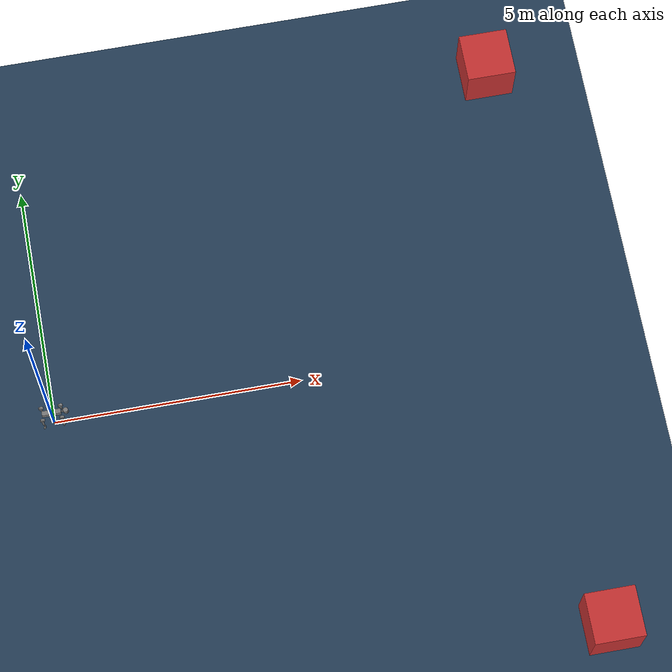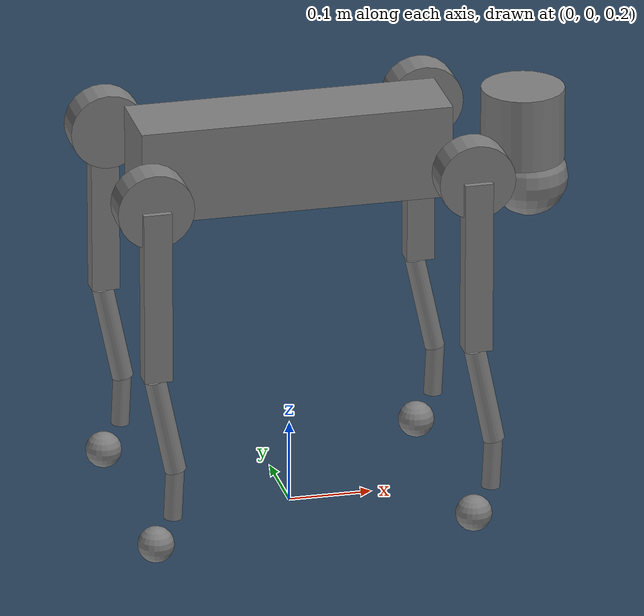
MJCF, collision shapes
<mujoco model="go2 scene">
  <include file="go2.xml" />
  <statistic center="0 0 0.1" extent="0.8" />
  <visual>
    <headlight diffuse="0.6 0.6 0.6" ambient="0.3 0.3 0.3" specular="0 0 0" />
    <rgba haze="0.15 0.25 0.35 1" />
    <global azimuth="-130" elevation="-20" />
    <map znear="0.01" zfar="100"/>
  </visual>
  <asset>
 <texture type="skybox" builtin="gradient" rgb1="0.3 0.5 0.7" rgb2="0 0 0" width="512" height="3072" />
    <texture type="2d" name="groundplane" builtin="checker" mark="edge" rgb1="0.2 0.3 0.4" rgb2="0.1 0.2 0.3" markrgb="0.8 0.8 0.8" width="300" height="300" />
    <material name="groundplane" texture="groundplane" texuniform="true" texrepeat="5 5" reflectance="0.2" />
</asset>
  <worldbody>
    <light pos="0 0 1.5" dir="0 0 -1" directional="true" />
    <geom name="floor" pos="0 0.0 0.01" size="0 0 0.01" type="plane" material="groundplane" />
<geom name="BP_Scene_Cube_1_C_2147482279" type="box" size="0.5 0.5 0.5" pos="10.0 -6.0 0.5" quat="1.0 0.0 0.0 0.0" rgba="0.8 0.2 0.2 1" solref="0.02 1" solimp="0.9 0.95 0.001"/>
<geom name="BP_Scene_Cube_2_C_2147482278" type="box" size="0.5 0.5 0.5" pos="10.0 6.0 0.5" quat="1.0 0.0 0.0 0.0" rgba="0.8 0.2 0.2 1" solref="0.02 1" solimp="0.9 0.95 0.001"/>
    </worldbody>
</mujoco>

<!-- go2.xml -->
<mujoco model="go2">
  <compiler angle="radian" meshdir="assets" autolimits="true" />

  <option cone="elliptic" impratio="100" />

  <default>
    <default class="go2">
      <geom friction="0.4" margin="0.001" condim="1"/>
      <joint axis="0 1 0" damping="0.1" armature="0.01" frictionloss="0.2"/>
      <motor ctrlrange="-23.7 23.7"/>
      <default class="abduction">
        <joint axis="1 0 0" range="-1.0472 1.0472"/>
      </default>
      <default class="hip">
        <default class="front_hip">
          <joint range="-1.5708 3.4907"/>
        </default>
        <default class="back_hip">
          <joint range="-0.5236 4.5379"/>
        </default>
      </default>
      <default class="knee">
        <joint range="-2.7227 -0.83776"/>
        <motor ctrlrange="-45.43 45.43"/>
      </default>
      <default class="visual">
        <geom type="mesh" contype="0" conaffinity="0" group="2"/>
      </default>
      <default class="collision">
        <geom group="3"/>
        <default class="foot">
          <geom size="0.022" pos="-0.002 0 -0.213" priority="1" condim="6"
            friction="0.4 0.02 0.01"/>
        </default>
      </default>
    </default>
  </default>

  <asset>
    <material name="metal" rgba=".9 .95 .95 1" />
    <material name="black" rgba="0 0 0 1" />
    <material name="white" rgba="1 1 1 1" />
    <material name="gray" rgba="0.671705 0.692426 0.774270 1" />

    <mesh name="base_0_LINK" file="base_0_LINK.obj" />
    <mesh name="base_1_LINK" file="base_1_LINK.obj" />
    <mesh name="base_2_LINK" file="base_2_LINK.obj" />
    <mesh name="base_3_LINK" file="base_3_LINK.obj" />
    <mesh name="base_4_BASE_LINK" file="base_4_BASE_LINK.obj" />

    <mesh name="FL_hip_0_LINK" file="hip_0_LINK.obj" />
    <mesh name="FL_hip_1_LINK" file="hip_1_LINK.obj" />
    <mesh name="FR_hip_0_LINK" file="hip_0_LINK.obj" />
    <mesh name="FR_hip_1_LINK" file="hip_1_LINK.obj" />
    <mesh name="RL_hip_0_LINK" file="hip_0_LINK.obj" />
    <mesh name="RL_hip_1_LINK" file="hip_1_LINK.obj" />
    <mesh name="RR_hip_0_LINK" file="hip_0_LINK.obj" />
    <mesh name="RR_hip_1_LINK" file="hip_1_LINK.obj" />

    <mesh name="FL_thigh_0_LINK" file="thigh_0_LINK.obj" />
    <mesh name="FL_thigh_1_LINK" file="thigh_1_LINK.obj" />
    <mesh name="RL_thigh_0_LINK" file="thigh_0_LINK.obj" />
    <mesh name="RL_thigh_1_LINK" file="thigh_1_LINK.obj" />

    <mesh name="FR_thigh_mirror_0_LINK" file="thigh_mirror_0_LINK.obj" />
    <mesh name="FR_thigh_mirror_1_LINK" file="thigh_mirror_1_LINK.obj" />
    <mesh name="RR_thigh_mirror_0_LINK" file="thigh_mirror_0_LINK.obj" />
    <mesh name="RR_thigh_mirror_1_LINK" file="thigh_mirror_1_LINK.obj" />

    <mesh name="FL_calf_0_LINK" file="calf_0_LINK.obj" />
    <mesh name="FL_calf_1_LINK" file="calf_1_LINK.obj" />
    <mesh name="RL_calf_0_LINK" file="calf_0_LINK.obj" />
    <mesh name="RL_calf_1_LINK" file="calf_1_LINK.obj" />

    <mesh name="FR_calf_mirror_0_LINK" file="calf_mirror_0_LINK.obj" />
    <mesh name="FR_calf_mirror_1_LINK" file="calf_mirror_1_LINK.obj" />
    <mesh name="RR_calf_mirror_0_LINK" file="calf_mirror_0_LINK.obj" />
    <mesh name="RR_calf_mirror_1_LINK" file="calf_mirror_1_LINK.obj" />

    <mesh name="FL_foot_LINK" file="foot_LINK.obj" />
    <mesh name="FR_foot_LINK" file="foot_LINK.obj" />
    <mesh name="RL_foot_LINK" file="foot_LINK.obj" />
    <mesh name="RR_foot_LINK" file="foot_LINK.obj" />
  </asset>

  <worldbody>
    <body name="base_link" pos="0 0 0.65" childclass="go2">
      <inertial pos="0.021112 0 -0.005366" quat="-0.000543471 0.713435 -0.00173769 0.700719"
        mass="6.921"
        diaginertia="0.107027 0.0980771 0.0244531" />
      <freejoint />
      <geom mesh="base_0_LINK" material="black" class="visual" />
      <geom mesh="base_1_LINK" material="black" class="visual" />
      <geom mesh="base_2_LINK" material="black" class="visual" />
      <geom mesh="base_3_LINK" material="white" class="visual" />
      <geom mesh="base_4_BASE_LINK" material="gray" class="visual" />
      <geom size="0.1881 0.04675 0.057" type="box" class="collision" />
      <geom size="0.05 0.045" pos="0.285 0 0.01" type="cylinder" class="collision" />
      <geom size="0.047" pos="0.293 0 -0.06" class="collision" />
      <site name="imu" pos="-0.02557 0 0.04232" />

      <body name="FL_hip" pos="0.1934 0.0465 0">
        <inertial pos="-0.0054 0.00194 -0.000105" quat="0.497014 0.499245 0.505462 0.498237"
          mass="0.678"
          diaginertia="0.00088403 0.000596003 0.000479967" />
        <joint name="FL_hip_joint" class="abduction" />
        <geom mesh="FL_hip_0_LINK" material="metal" class="visual" />
        <geom mesh="FL_hip_1_LINK" material="gray" class="visual" />
        <geom size="0.046 0.02" pos="0 0.08 0" quat="1 1 0 0" type="cylinder" class="collision" />
        <body name="FL_thigh" pos="0 0.0955 0">
          <inertial pos="-0.00374 -0.0223 -0.0327" quat="0.829533 0.0847635 -0.0200632 0.551623"
            mass="1.152"
            diaginertia="0.00594973 0.00584149 0.000878787" />
          <joint name="FL_thigh_joint" class="front_hip" />
          <geom mesh="FL_thigh_0_LINK" material="metal" class="visual" />
          <geom mesh="FL_thigh_1_LINK" material="gray" class="visual" />
          <geom size="0.1065 0.01225 0.017" pos="0 0 -0.1065" quat="0.707107 0 0.707107 0"
            type="box" class="collision" />
          <body name="FL_calf" pos="0 0 -0.213">
            <inertial pos="0.00629595 -0.000622121 -0.141417"
              quat="0.710672 0.00154099 -0.00450087 0.703508"
              mass="0.241352" diaginertia="0.0014901 0.00146356 5.31397e-05" />
            <joint name="FL_calf_joint" class="knee" />
            <geom mesh="FL_calf_0_LINK" material="gray" class="visual" />
            <geom mesh="FL_calf_1_LINK" material="black" class="visual" />
            <geom size="0.012 0.06" pos="0.008 0 -0.06" quat="0.994493 0 -0.104807 0"
              type="cylinder" class="collision" />
            <geom size="0.011 0.0325" pos="0.02 0 -0.148" quat="0.999688 0 0.0249974 0"
              type="cylinder" class="collision" />
            <geom pos="0 0 -0.213" mesh="FL_foot_LINK" class="visual" material="black" />
            <geom name="FL" class="foot" />
            <body name="FL_foot" pos="0 0 -0.213" />
          </body>
        </body>
      </body>
      <body name="FR_hip" pos="0.1934 -0.0465 0">
        <inertial pos="-0.0054 -0.00194 -0.000105" quat="0.498237 0.505462 0.499245 0.497014"
          mass="0.678"
          diaginertia="0.00088403 0.000596003 0.000479967" />
        <joint name="FR_hip_joint" class="abduction" />
        <geom mesh="FR_hip_0_LINK" material="metal" class="visual" quat="4.63268e-05 1 0 0" />
        <geom mesh="FR_hip_1_LINK" material="gray" class="visual" quat="4.63268e-05 1 0 0" />
        <geom size="0.046 0.02" pos="0 -0.08 0" quat="0.707107 0.707107 0 0" type="cylinder"
          class="collision" />
        <body name="FR_thigh" pos="0 -0.0955 0">
          <inertial pos="-0.00374 0.0223 -0.0327" quat="0.551623 -0.0200632 0.0847635 0.829533"
            mass="1.152"
            diaginertia="0.00594973 0.00584149 0.000878787" />
          <joint name="FR_thigh_joint" class="front_hip" />
          <geom mesh="FR_thigh_mirror_0_LINK" material="metal" class="visual" />
          <geom mesh="FR_thigh_mirror_1_LINK" material="gray" class="visual" />
          <geom size="0.1065 0.01225 0.017" pos="0 0 -0.1065" quat="0.707107 0 0.707107 0"
            type="box" class="collision" />
          <body name="FR_calf" pos="0 0 -0.213">
            <inertial pos="0.00629595 0.000622121 -0.141417"
              quat="0.703508 -0.00450087 0.00154099 0.710672"
              mass="0.241352" diaginertia="0.0014901 0.00146356 5.31397e-05" />
            <joint name="FR_calf_joint" class="knee" />
            <geom mesh="FR_calf_mirror_0_LINK" material="gray" class="visual" />
            <geom mesh="FR_calf_mirror_1_LINK" material="black" class="visual" />
            <geom size="0.013 0.06" pos="0.01 0 -0.06" quat="0.995004 0 -0.0998334 0"
              type="cylinder" class="collision" />
            <geom size="0.011 0.0325" pos="0.02 0 -0.148" quat="0.999688 0 0.0249974 0"
              type="cylinder" class="collision" />
            <geom pos="0 0 -0.213" mesh="FR_foot_LINK" class="visual" material="black" />
            <geom name="FR" class="foot" />
            <body name="FR_foot" pos="0 0 -0.213" />
          </body>
        </body>
      </body>
      <body name="RL_hip" pos="-0.1934 0.0465 0">
        <inertial pos="0.0054 0.00194 -0.000105" quat="0.505462 0.498237 0.497014 0.499245"
          mass="0.678"
          diaginertia="0.00088403 0.000596003 0.000479967" />
        <joint name="RL_hip_joint" class="abduction" />
        <geom mesh="RL_hip_0_LINK" material="metal" class="visual" quat="4.63268e-05 0 1 0" />
        <geom mesh="RL_hip_1_LINK" material="gray" class="visual" quat="4.63268e-05 0 1 0" />
        <geom size="0.046 0.02" pos="0 0.08 0" quat="0.707107 0.707107 0 0" type="cylinder"
          class="collision" />
        <body name="RL_thigh" pos="0 0.0955 0">
          <inertial pos="-0.00374 -0.0223 -0.0327" quat="0.829533 0.0847635 -0.0200632 0.551623"
            mass="1.152"
            diaginertia="0.00594973 0.00584149 0.000878787" />
          <joint name="RL_thigh_joint" class="back_hip" />
          <geom mesh="RL_thigh_0_LINK" material="metal" class="visual" />
          <geom mesh="RL_thigh_1_LINK" material="gray" class="visual" />
          <geom size="0.1065 0.01225 0.017" pos="0 0 -0.1065" quat="0.707107 0 0.707107 0"
            type="box" class="collision" />
          <body name="RL_calf" pos="0 0 -0.213">
            <inertial pos="0.00629595 -0.000622121 -0.141417"
              quat="0.710672 0.00154099 -0.00450087 0.703508"
              mass="0.241352" diaginertia="0.0014901 0.00146356 5.31397e-05" />
            <joint name="RL_calf_joint" class="knee" />
            <geom mesh="RL_calf_0_LINK" material="gray" class="visual" />
            <geom mesh="RL_calf_1_LINK" material="black" class="visual" />
            <geom size="0.013 0.06" pos="0.01 0 -0.06" quat="0.995004 0 -0.0998334 0"
              type="cylinder" class="collision" />
            <geom size="0.011 0.0325" pos="0.02 0 -0.148" quat="0.999688 0 0.0249974 0"
              type="cylinder" class="collision" />
            <geom pos="0 0 -0.213" mesh="RL_foot_LINK" class="visual" material="black" />
            <geom name="RL" class="foot" />
            <body name="RL_foot" pos="0 0 -0.213" />
          </body>
        </body>
      </body>
      <body name="RR_hip" pos="-0.1934 -0.0465 0">
        <inertial pos="0.0054 -0.00194 -0.000105" quat="0.499245 0.497014 0.498237 0.505462"
          mass="0.678"
          diaginertia="0.00088403 0.000596003 0.000479967" />
        <joint name="RR_hip_joint" class="abduction" />
        <geom mesh="RR_hip_0_LINK" material="metal" class="visual"
          quat="2.14617e-09 4.63268e-05 4.63268e-05 -1" />
        <geom mesh="RR_hip_1_LINK" material="gray" class="visual"
          quat="2.14617e-09 4.63268e-05 4.63268e-05 -1" />
        <geom size="0.046 0.02" pos="0 -0.08 0" quat="0.707107 0.707107 0 0" type="cylinder"
          class="collision" />
        <body name="RR_thigh" pos="0 -0.0955 0">
          <inertial pos="-0.00374 0.0223 -0.0327" quat="0.551623 -0.0200632 0.0847635 0.829533"
            mass="1.152"
            diaginertia="0.00594973 0.00584149 0.000878787" />
          <joint name="RR_thigh_joint" class="back_hip" />
          <geom mesh="RR_thigh_mirror_0_LINK" material="metal" class="visual" />
          <geom mesh="RR_thigh_mirror_1_LINK" material="gray" class="visual" />
          <geom size="0.1065 0.01225 0.017" pos="0 0 -0.1065" quat="0.707107 0 0.707107 0"
            type="box" class="collision" />
          <body name="RR_calf" pos="0 0 -0.213">
            <inertial pos="0.00629595 0.000622121 -0.141417"
              quat="0.703508 -0.00450087 0.00154099 0.710672"
              mass="0.241352" diaginertia="0.0014901 0.00146356 5.31397e-05" />
            <joint name="RR_calf_joint" class="knee" />
            <geom mesh="RR_calf_mirror_0_LINK" material="gray" class="visual" />
            <geom mesh="RR_calf_mirror_1_LINK" material="black" class="visual" />
            <geom size="0.013 0.06" pos="0.01 0 -0.06" quat="0.995004 0 -0.0998334 0"
              type="cylinder" class="collision" />
            <geom size="0.011 0.0325" pos="0.02 0 -0.148" quat="0.999688 0 0.0249974 0"
              type="cylinder" class="collision" />
            <geom pos="0 0 -0.213" mesh="RR_foot_LINK" class="visual" material="black" />
            <geom name="RR" class="foot" />
            <body name="RR_foot" pos="0 0 -0.213" />
          </body>
        </body>
      </body>
    </body>
  </worldbody>

  <actuator>
    <motor class="abduction" name="FR_hip" joint="FR_hip_joint" />
    <motor class="hip" name="FR_thigh" joint="FR_thigh_joint" />
    <motor class="knee" name="FR_calf" joint="FR_calf_joint" />
    <motor class="abduction" name="FL_hip" joint="FL_hip_joint" />
    <motor class="hip" name="FL_thigh" joint="FL_thigh_joint" />
    <motor class="knee" name="FL_calf" joint="FL_calf_joint" />
    <motor class="abduction" name="RR_hip" joint="RR_hip_joint" />
    <motor class="hip" name="RR_thigh" joint="RR_thigh_joint" />
    <motor class="knee" name="RR_calf" joint="RR_calf_joint" />
    <motor class="abduction" name="RL_hip" joint="RL_hip_joint" />
    <motor class="hip" name="RL_thigh" joint="RL_thigh_joint" />
    <motor class="knee" name="RL_calf" joint="RL_calf_joint" />
  </actuator>

  <sensor>
    <jointpos name="FR_hip_pos" joint="FR_hip_joint" />
    <jointpos name="FR_thigh_pos" joint="FR_thigh_joint" />
    <jointpos name="FR_calf_pos" joint="FR_calf_joint" />
    <jointpos name="FL_hip_pos" joint="FL_hip_joint" />
    <jointpos name="FL_thigh_pos" joint="FL_thigh_joint" />
    <jointpos name="FL_calf_pos" joint="FL_calf_joint" />
    <jointpos name="RR_hip_pos" joint="RR_hip_joint" />
    <jointpos name="RR_thigh_pos" joint="RR_thigh_joint" />
    <jointpos name="RR_calf_pos" joint="RR_calf_joint" />
    <jointpos name="RL_hip_pos" joint="RL_hip_joint" />
    <jointpos name="RL_thigh_pos" joint="RL_thigh_joint" />
    <jointpos name="RL_calf_pos" joint="RL_calf_joint" />

    <jointvel name="FR_hip_vel" joint="FR_hip_joint" />
    <jointvel name="FR_thigh_vel" joint="FR_thigh_joint" />
    <jointvel name="FR_calf_vel" joint="FR_calf_joint" />
    <jointvel name="FL_hip_vel" joint="FL_hip_joint" />
    <jointvel name="FL_thigh_vel" joint="FL_thigh_joint" />
    <jointvel name="FL_calf_vel" joint="FL_calf_joint" />
    <jointvel name="RR_hip_vel" joint="RR_hip_joint" />
    <jointvel name="RR_thigh_vel" joint="RR_thigh_joint" />
    <jointvel name="RR_calf_vel" joint="RR_calf_joint" />
    <jointvel name="RL_hip_vel" joint="RL_hip_joint" />
    <jointvel name="RL_thigh_vel" joint="RL_thigh_joint" />
    <jointvel name="RL_calf_vel" joint="RL_calf_joint" />

    <jointactuatorfrc name="FR_hip_torque" joint="FR_hip_joint" noise="0.01" />
    <jointactuatorfrc name="FR_thigh_torque" joint="FR_thigh_joint" noise="0.01" />
    <jointactuatorfrc name="FR_calf_torque" joint="FR_calf_joint" noise="0.01" />
    <jointactuatorfrc name="FL_hip_torque" joint="FL_hip_joint" noise="0.01" />
    <jointactuatorfrc name="FL_thigh_torque" joint="FL_thigh_joint" noise="0.01" />
    <jointactuatorfrc name="FL_calf_torque" joint="FL_calf_joint" noise="0.01" />
    <jointactuatorfrc name="RR_hip_torque" joint="RR_hip_joint" noise="0.01" />
    <jointactuatorfrc name="RR_thigh_torque" joint="RR_thigh_joint" noise="0.01" />
    <jointactuatorfrc name="RR_calf_torque" joint="RR_calf_joint" noise="0.01" />
    <jointactuatorfrc name="RL_hip_torque" joint="RL_hip_joint" noise="0.01" />
    <jointactuatorfrc name="RL_thigh_torque" joint="RL_thigh_joint" noise="0.01" />
    <jointactuatorfrc name="RL_calf_torque" joint="RL_calf_joint" noise="0.01" />

    <framequat name="imu_quat" objtype="site" objname="imu" />
    <gyro name="imu_gyro" site="imu" />
    <accelerometer name="imu_acc" site="imu" />

    <framepos name="frame_pos" objtype="site" objname="imu" />
    <framelinvel name="frame_vel" objtype="site" objname="imu" />
  </sensor>

</mujoco>
